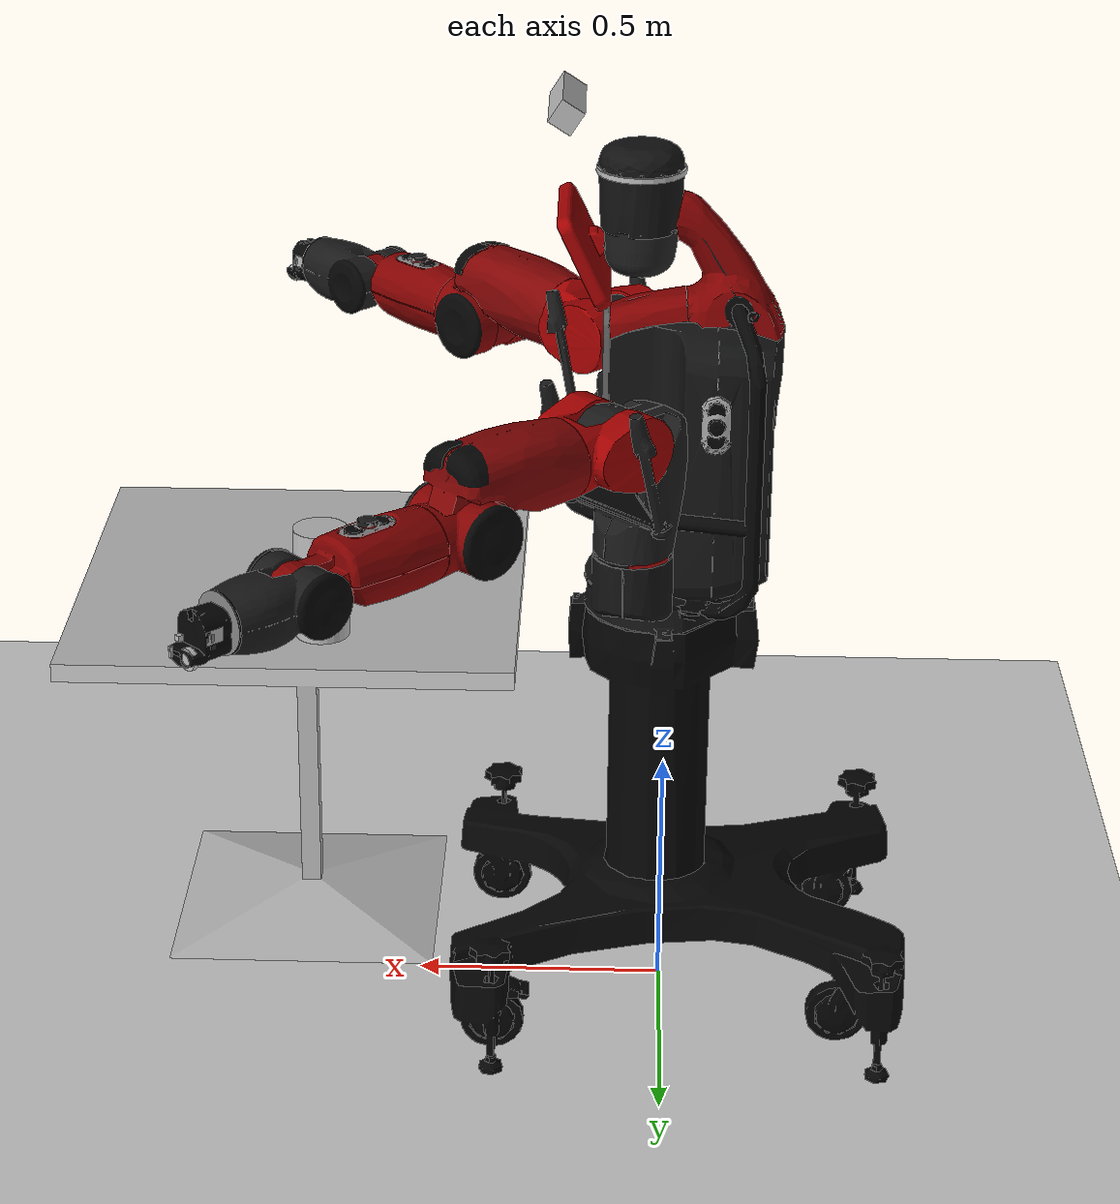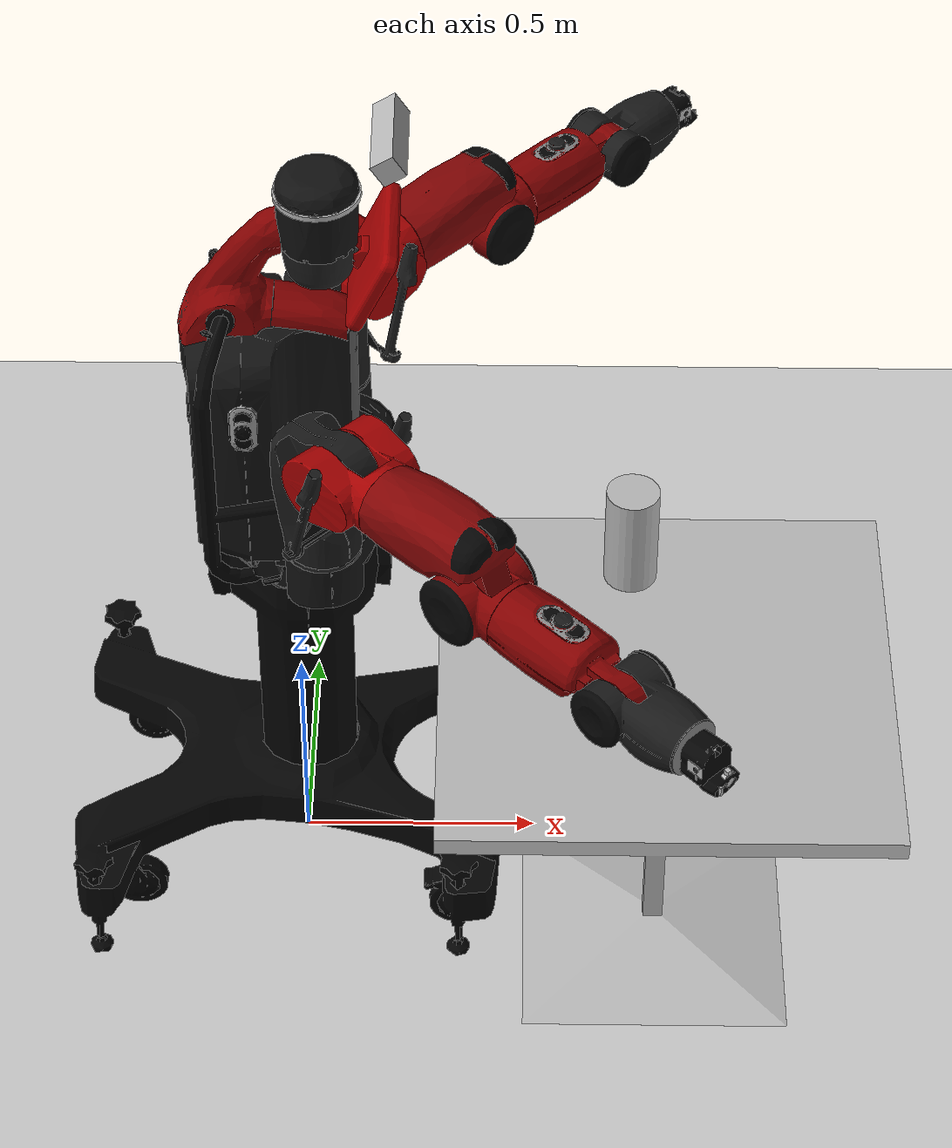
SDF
<sdf version="1.4">
 <world name="default">
  <model name="ground_plane">
   <static>1</static>
   <link name="link">
    <collision name="collision">
     <geometry><plane><normal>0 0 1</normal><size>100 100</size></plane></geometry>
     <surface><friction><ode><mu>100</mu><mu2>50</mu2></ode></friction></surface>
    </collision>
    <visual name="visual">
     <cast_shadows>0</cast_shadows>
     <geometry><plane><normal>0 0 1</normal><size>100 100</size></plane></geometry>
     <material>
      <script><uri>file://media/materials/scripts/gazebo.material</uri><name>Gazebo/Grey</name></script>
     </material>
    </visual>
    <velocity_decay><linear>0</linear><angular>0</angular></velocity_decay>
   </link>
  </model>
  <light name="sun" type="directional">
   <pose>0 0 10 0 -0 0</pose>
   <diffuse>0.8 0.8 0.8 1</diffuse>
   <specular>0.2 0.2 0.2 1</specular>
   <attenuation>
    <range>1000</range>
    <constant>0.9</constant>
    <linear>0.01</linear>
    <quadratic>0.001</quadratic>
   </attenuation>
   <direction>-0.5 0.1 -0.9</direction>
  </light>
  <physics type="ode">
   <real_time_update_rate>1000</real_time_update_rate>
   <gravity>0 0 -9.81</gravity>
   <max_step_size>0.001</max_step_size>
   <real_time_factor>1</real_time_factor>
  </physics>
  <scene><ambient>0.4 0.4 0.4 1</ambient><background>0.7 0.7 0.7 1</background><shadows>1</shadows></scene>
  <spherical_coordinates>
   <surface_model>EARTH_WGS84</surface_model>
   <latitude_deg>0</latitude_deg>
   <longitude_deg>0</longitude_deg>
   <elevation>0</elevation>
   <heading_deg>0</heading_deg>
  </spherical_coordinates>
  <model name="baxter">
   <link name="base">
    <inertial>
     <pose>0.000207875 -1.05548e-22 0.000989949 0 -0 0</pose>
     <mass>96.3011</mass>
     <inertia>
      <ixx>7.00413</ixx>
      <ixy>0.00068017</ixy>
      <ixz>0.62881</ixz>
      <iyy>7.84493</iyy>
      <iyz>0.00434511</iyz>
      <izz>5.76917</izz>
     </inertia>
    </inertial>
    <collision name="base_collision_collision_head_link_1">
     <pose>0.04 -0.04 0.75 0 -0 0</pose>
     <geometry><sphere><radius>0.22</radius></sphere></geometry>
    </collision>
    <collision name="base_collision_collision_head_link_2">
     <pose>0.04 0.04 0.75 0 -0 0</pose>
     <geometry><sphere><radius>0.22</radius></sphere></geometry>
    </collision>
    <collision name="base_collision_kinect_link">
     <pose>0.2 0 0.95 0 1 0</pose>
     <geometry><box><size>0.05 0.2 0.05</size></box></geometry>
    </collision>
    <collision name="base_collision_pedestal">
     <geometry>
      <mesh>
       <scale>1 1 1</scale>
       <uri>/home/wyatt/ros_ws/src/rethink/baxter_common/baxter_description/meshes/base/pedestal_link_collision.DAE</uri>
      </mesh>
     </geometry>
    </collision>
    <collision name="base_collision_sonar_ring">
     <pose>0.0947 0 0.817 0 -0 0</pose>
     <geometry><sphere><radius>0.001</radius></sphere></geometry>
    </collision>
    <collision name="base_collision_torso">
     <geometry>
      <mesh>
       <scale>1 1 1</scale>
       <uri>/home/wyatt/ros_ws/src/rethink/baxter_common/baxter_description/meshes/torso/base_link_collision.DAE</uri>
      </mesh>
     </geometry>
    </collision>
    <visual name="base_visual_collision_head_link_1">
     <pose>0.11 0 0.75 0 -0 0</pose>
     <geometry><sphere><radius>0.001</radius></sphere></geometry>
    </visual>
    <visual name="base_visual_collision_head_link_2">
     <pose>0.11 0 0.75 0 -0 0</pose>
     <geometry><sphere><radius>0.001</radius></sphere></geometry>
    </visual>
    <visual name="base_visual_kinect_link">
     <pose>0.2 0 0.95 0 1 0</pose>
     <geometry><box><size>0.05 0.2 0.05</size></box></geometry>
    </visual>
    <visual name="base_visual_pedestal">
     <geometry>
      <mesh>
       <scale>1 1 1</scale>
       <uri>/home/wyatt/ros_ws/src/rethink/baxter_common/baxter_description/meshes/base/PEDESTAL.DAE</uri>
      </mesh>
     </geometry>
    </visual>
    <visual name="base_visual_sonar_ring">
     <pose>0.06 0 0.82653 0 -0 0</pose>
     <geometry><cylinder><length>0.01</length><radius>0.085</radius></cylinder></geometry>
    </visual>
    <visual name="base_visual_torso">
     <geometry>
      <mesh>
       <scale>1 1 1</scale>
       <uri>/home/wyatt/ros_ws/src/rethink/baxter_common/baxter_description/meshes/torso/base_link.DAE</uri>
      </mesh>
     </geometry>
    </visual>
    <velocity_decay><linear>0</linear><angular>0</angular></velocity_decay>
    <sensor name="openni_camera_camera" type="depth">
     <always_on>1</always_on>
     <visualize>1</visualize>
     <camera name="__default__">
      <horizontal_fov>1.047</horizontal_fov>
      <image><width>640</width><height>480</height><format>R8G8B8</format></image>
      <depth_camera><output>depths</output></depth_camera>
      <clip><near>0.1</near><far>100</far></clip>
     </camera>
     <plugin name="camera_controller" filename="libgazebo_ros_openni_kinect.so">
      <alwaysOn>true</alwaysOn>
      <updateRate>10.0</updateRate>
      <cameraName>kinect</cameraName>
      <frameName>kinect_pc_frame</frameName>
      <imageTopicName>rgb/image_raw</imageTopicName>
      <depthImageTopicName>depth/image_raw</depthImageTopicName>
      <pointCloudTopicName>depth/points</pointCloudTopicName>
      <cameraInfoTopicName>rgb/camera_info</cameraInfoTopicName>
      <depthImageCameraInfoTopicName>depth/camera_info</depthImageCameraInfoTopicName>
      <pointCloudCutoff>0.4</pointCloudCutoff>
      <hackBaseline>0.07</hackBaseline>
      <distortionK1>0.0</distortionK1>
      <distortionK2>0.0</distortionK2>
      <distortionK3>0.0</distortionK3>
      <distortionT1>0.0</distortionT1>
      <distortionT2>0.0</distortionT2>
      <CxPrime>0.0</CxPrime>
      <Cx>0.0</Cx>
      <Cy>0.0</Cy>
      <focalLength>0.0</focalLength>
      <robotNamespace>/</robotNamespace>
     </plugin>
     <pose>0.2 0 0.95 0 1 0</pose>
    </sensor>
    <velocity_decay><linear>0</linear><angular>0</angular></velocity_decay>
    <velocity_decay><linear>0</linear><angular>0</angular></velocity_decay>
    <sensor name="sonar" type="ray">
     <ray>
      <scan>
       <horizontal>
        <samples>12</samples>
        <resolution>1</resolution>
        <min_angle>-3.14</min_angle>
        <max_angle>3.14</max_angle>
       </horizontal>
       <vertical>
        <samples>2</samples>
        <resolution>1</resolution>
        <min_angle>-0.001</min_angle>
        <max_angle>0</max_angle>
       </vertical>
      </scan>
      <range><min>0.05</min><max>50</max></range>
     </ray>
     <plugin name="sonar_plugin" filename="libgazebo_ros_block_laser.so">
      <gaussianNoise>0.00</gaussianNoise>
      <alwaysOn>true</alwaysOn>
      <updateRate>100.0</updateRate>
      <topicName>/robot/sonar/head_sonar/state</topicName>
      <frameName>sonar_ring</frameName>
      <robotNamespace>/</robotNamespace>
     </plugin>
     <always_on>1</always_on>
     <update_rate>100</update_rate>
     <pose>0.0947 0 0.817 0 -0 0</pose>
    </sensor>
   </link>
   <link name="head">
    <pose>0.06 0 0.686 0 -0 0</pose>
    <inertial>
     <pose>0.0546769 1.41761e-18 4.85084e-06 0 -0 0</pose>
     <mass>0.988238</mass>
     <inertia>
      <ixx>0.00620194</ixx>
      <ixy>0.000202093</ixy>
      <ixz>0.000495898</ixz>
      <iyy>0.010977</iyy>
      <iyz>-0.00109806</iyz>
      <izz>0.00983914</izz>
     </inertia>
    </inertial>
    <collision name="head_collision"><geometry><sphere><radius>0.001</radius></sphere></geometry></collision>
    <collision name="head_collision_screen">
     <pose>0.1227 0 0 1.75057 5.55112e-17 1.5708</pose>
     <geometry><sphere><radius>0.001</radius></sphere></geometry>
    </collision>
    <visual name="head_visual">
     <pose>0 0 0.00953 0 -0 0</pose>
     <geometry>
      <mesh>
       <scale>1 1 1</scale>
       <uri>/home/wyatt/ros_ws/src/rethink/baxter_common/baxter_description/meshes/head/H0.DAE</uri>
      </mesh>
     </geometry>
    </visual>
    <visual name="head_visual_display">
     <pose>0.119839 1.40131e-14 -0.0157421 2.01237 5.55112e-17 1.5708</pose>
     <geometry><box><size>0.218 0.16 0.001</size></box></geometry>
     <plugin name="screen_video_controller" filename="libgazebo_ros_video.so">
      <height>600</height>
      <width>1024</width>
      <topicName>/robot/xdisplay</topicName>
      <robotNamespace>/</robotNamespace>
     </plugin>
    </visual>
    <visual name="head_visual_screen">
     <pose>0.0868552 1.75522e-13 -0.00317182 1.5708 0.179774 8.02016e-14</pose>
     <geometry>
      <mesh>
       <scale>1 1 1</scale>
       <uri>/home/wyatt/ros_ws/src/rethink/baxter_common/baxter_description/meshes/head/H1.DAE</uri>
      </mesh>
     </geometry>
    </visual>
    <velocity_decay><linear>0</linear><angular>0</angular></velocity_decay>
    <sensor name="head_camera" type="camera">
     <update_rate>30</update_rate>
     <camera name="head_camera">
      <pose>0 0.21 0 -7.96765e-17 -0.8 -1.5708</pose>
      <horizontal_fov>1.39626</horizontal_fov>
      <image><width>800</width><height>800</height><format>R8G8B8</format></image>
      <clip><near>0.02</near><far>300</far></clip>
      <noise><type>gaussian</type><mean>0</mean><stddev>0.007</stddev></noise>
     </camera>
     <plugin name="camera_controller" filename="libgazebo_ros_camera.so">
      <alwaysOn>true</alwaysOn>
      <updateRate>0.0</updateRate>
      <cameraName>head_camera</cameraName>
      <imageTopicName>image</imageTopicName>
      <cameraInfoTopicName>camera_info</cameraInfoTopicName>
      <frameName>head_camera</frameName>
      <hackBaseline>0.07</hackBaseline>
      <distortionK1>0.0</distortionK1>
      <distortionK2>0.0</distortionK2>
      <distortionK3>0.0</distortionK3>
      <distortionT1>0.0</distortionT1>
      <distortionT2>0.0</distortionT2>
      <robotNamespace>/cameras</robotNamespace>
     </plugin>
     <pose>0.12839 0 0.06368 1.75057 5.55112e-17 1.5708</pose>
    </sensor>
    <velocity_decay><linear>0</linear><angular>0</angular></velocity_decay>
   </link>
   <joint name="head_pan" type="revolute">
    <child>head</child>
    <parent>base</parent>
    <axis>
     <xyz>0 0 1</xyz>
     <limit><lower>-1.5708</lower><upper>1.5708</upper><effort>50000</effort><velocity>10000</velocity></limit>
     <dynamics><damping>0.7</damping></dynamics>
    </axis>
    <physics>
     <ode>
      <implicit_spring_damper>1</implicit_spring_damper>
      <cfm_damping>1</cfm_damping>
      <limit><cfm>0</cfm><erp>0.2</erp></limit>
     </ode>
    </physics>
   </joint>
   <link name="left_upper_shoulder">
    <pose>0.0640272 0.259027 0.129626 0 -0 0.7854</pose>
    <inertial>
     <pose>0.01783 0.00086 0.19127 0 -0 0</pose>
     <mass>5.70044</mass>
     <inertia>
      <ixx>0.047091</ixx>
      <ixy>0.000127876</ixy>
      <ixz>0.0061487</ixz>
      <iyy>0.0376698</iyy>
      <iyz>0.000780869</iyz>
      <izz>0.0359599</izz>
     </inertia>
    </inertial>
    <collision name="left_upper_shoulder_collision">
     <pose>0 0 0.1361 0 -0 0</pose>
     <geometry><cylinder><length>0.2722</length><radius>0.06</radius></cylinder></geometry>
    </collision>
    <visual name="left_upper_shoulder_visual">
     <geometry>
      <mesh>
       <scale>1 1 1</scale>
       <uri>/home/wyatt/ros_ws/src/rethink/baxter_common/baxter_description/meshes/upper_shoulder/S0.DAE</uri>
      </mesh>
     </geometry>
    </visual>
    <velocity_decay><linear>0</linear><angular>0</angular></velocity_decay>
    <gravity>0</gravity>
   </link>
   <joint name="left_s0" type="revolute">
    <child>left_upper_shoulder</child>
    <parent>base</parent>
    <axis>
     <xyz>0 0 1</xyz>
     <limit><lower>-1.70168</lower><upper>1.70168</upper><effort>50</effort><velocity>1.5</velocity></limit>
     <dynamics><damping>0.7</damping></dynamics>
    </axis>
    <physics>
     <ode>
      <implicit_spring_damper>1</implicit_spring_damper>
      <cfm_damping>1</cfm_damping>
      <limit><cfm>0</cfm><erp>0.2</erp></limit>
     </ode>
    </physics>
   </joint>
   <link name="left_lower_shoulder">
    <pose>0.112818 0.307818 0.399976 -1.5708 -0 0.7854</pose>
    <inertial>
     <pose>0.0684512 0.00268992 -0.00528984 0 -0 0</pose>
     <mass>3.22708</mass>
     <inertia>
      <ixx>0.0117521</ixx>
      <ixy>-0.000300954</ixy>
      <ixz>0.00207674</ixz>
      <iyy>0.0278861</iyy>
      <iyz>-0.000188219</iyz>
      <izz>0.0207877</izz>
     </inertia>
    </inertial>
    <collision name="left_lower_shoulder_collision">
     <geometry><cylinder><length>0.12</length><radius>0.06</radius></cylinder></geometry>
    </collision>
    <collision name="left_lower_shoulder_collision_left_upper_elbow_visual">
     <pose>0.2435 -6.68382e-13 6.68382e-13 1.5708 -5.55112e-17 1.5708</pose>
     <geometry><cylinder><length>0.273</length><radius>0.06</radius></cylinder></geometry>
    </collision>
    <visual name="left_lower_shoulder_visual">
     <geometry>
      <mesh>
       <scale>1 1 1</scale>
       <uri>/home/wyatt/ros_ws/src/rethink/baxter_common/baxter_description/meshes/lower_shoulder/S1.DAE</uri>
      </mesh>
     </geometry>
    </visual>
    <velocity_decay><linear>0</linear><angular>0</angular></velocity_decay>
    <gravity>0</gravity>
   </link>
   <joint name="left_s1" type="revolute">
    <child>left_lower_shoulder</child>
    <parent>left_upper_shoulder</parent>
    <axis>
     <xyz>-0.707108 0.707105 0</xyz>
     <limit><lower>-2.147</lower><upper>1.047</upper><effort>100</effort><velocity>1.5</velocity></limit>
     <dynamics><damping>0.7</damping></dynamics>
    </axis>
    <physics>
     <ode>
      <implicit_spring_damper>1</implicit_spring_damper>
      <cfm_damping>1</cfm_damping>
      <limit><cfm>0</cfm><erp>0.2</erp></limit>
     </ode>
    </physics>
   </joint>
   <link name="left_upper_elbow">
    <pose>0.184942 0.379943 0.399976 -2.35616 1.57079 -1.57076</pose>
    <inertial>
     <pose>-0.00276 0.00132 0.18086 0 -0 0</pose>
     <mass>4.31272</mass>
     <inertia>
      <ixx>0.0266173</ixx>
      <ixy>0.000292706</ixy>
      <ixz>0.0039219</ixz>
      <iyy>0.0284436</iyy>
      <iyz>0.00108389</iyz>
      <izz>0.0124801</izz>
     </inertia>
    </inertial>
    <collision name="left_upper_elbow_collision">
     <pose>0 0 -0.0535 0 -0 0</pose>
     <geometry><cylinder><length>0.107</length><radius>0.06</radius></cylinder></geometry>
    </collision>
    <visual name="left_upper_elbow_visual">
     <geometry>
      <mesh>
       <scale>1 1 1</scale>
       <uri>/home/wyatt/ros_ws/src/rethink/baxter_common/baxter_description/meshes/upper_elbow/E0.DAE</uri>
      </mesh>
     </geometry>
    </visual>
    <velocity_decay><linear>0</linear><angular>0</angular></velocity_decay>
    <gravity>0</gravity>
   </link>
   <joint name="left_e0" type="revolute">
    <child>left_upper_elbow</child>
    <parent>left_lower_shoulder</parent>
    <axis>
     <xyz>0.707105 0.707108 0</xyz>
     <limit><lower>-3.05418</lower><upper>3.05418</upper><effort>50</effort><velocity>1.5</velocity></limit>
     <dynamics><damping>0.7</damping></dynamics>
    </axis>
    <physics>
     <ode>
      <implicit_spring_damper>1</implicit_spring_damper>
      <cfm_damping>1</cfm_damping>
      <limit><cfm>0</cfm><erp>0.2</erp></limit>
     </ode>
    </physics>
   </joint>
   <link name="left_lower_elbow">
    <pose>0.370501 0.565502 0.330976 -1.5708 -0 0.7854</pose>
    <inertial>
     <pose>0.026113 0.00158992 -0.0111695 0 -0 0</pose>
     <mass>2.07216</mass>
     <inertia>
      <ixx>0.00711585</ixx>
      <ixy>0.000360372</ixy>
      <ixz>0.00074588</ixz>
      <iyy>0.0131827</iyy>
      <iyz>-0.000196632</iyz>
      <izz>0.00926891</izz>
     </inertia>
    </inertial>
    <collision name="left_lower_elbow_collision">
     <geometry><cylinder><length>0.1</length><radius>0.06</radius></cylinder></geometry>
    </collision>
    <collision name="left_lower_elbow_collision_left_upper_forearm_visual">
     <pose>0.224 -6.6594e-13 6.6594e-13 1.5708 -5.55112e-17 1.5708</pose>
     <geometry><cylinder><length>0.272</length><radius>0.06</radius></cylinder></geometry>
    </collision>
    <visual name="left_lower_elbow_visual">
     <geometry>
      <mesh>
       <scale>1 1 1</scale>
       <uri>/home/wyatt/ros_ws/src/rethink/baxter_common/baxter_description/meshes/lower_elbow/E1.DAE</uri>
      </mesh>
     </geometry>
    </visual>
    <velocity_decay><linear>0</linear><angular>0</angular></velocity_decay>
    <gravity>0</gravity>
   </link>
   <joint name="left_e1" type="revolute">
    <child>left_lower_elbow</child>
    <parent>left_upper_elbow</parent>
    <axis>
     <xyz>-0.707108 0.707105 0</xyz>
     <limit><lower>-0.05</lower><upper>2.618</upper><effort>50</effort><velocity>1.5</velocity></limit>
     <dynamics><damping>0.7</damping></dynamics>
    </axis>
    <physics>
     <ode>
      <implicit_spring_damper>1</implicit_spring_damper>
      <cfm_damping>1</cfm_damping>
      <limit><cfm>0</cfm><erp>0.2</erp></limit>
     </ode>
    </physics>
   </joint>
   <link name="left_upper_forearm">
    <pose>0.44375 0.638751 0.330976 -2.03443 1.57079 -1.24903</pose>
    <inertial>
     <pose>-0.00168244 0.0045998 0.139519 0 -0 0</pose>
     <mass>2.24675</mass>
     <inertia>
      <ixx>0.0166775</ixx>
      <ixy>0.000184012</ixy>
      <ixz>0.000186469</ixz>
      <iyy>0.0167549</iyy>
      <iyz>-0.000647332</iyz>
      <izz>0.00374662</izz>
     </inertia>
    </inertial>
    <collision name="left_upper_forearm_collision">
     <pose>0 0 -0.044 0 -0 0</pose>
     <geometry><cylinder><length>0.088</length><radius>0.06</radius></cylinder></geometry>
    </collision>
    <visual name="left_upper_forearm_visual">
     <geometry>
      <mesh>
       <scale>1 1 1</scale>
       <uri>/home/wyatt/ros_ws/src/rethink/baxter_common/baxter_description/meshes/upper_forearm/W0.DAE</uri>
      </mesh>
     </geometry>
    </visual>
    <velocity_decay><linear>0</linear><angular>0</angular></velocity_decay>
    <gravity>0</gravity>
   </link>
   <joint name="left_w0" type="revolute">
    <child>left_upper_forearm</child>
    <parent>left_lower_elbow</parent>
    <axis>
     <xyz>0.707105 0.707108 0</xyz>
     <limit><lower>-3.059</lower><upper>3.059</upper><effort>15</effort><velocity>4</velocity></limit>
     <dynamics><damping>0.7</damping></dynamics>
    </axis>
    <physics>
     <ode>
      <implicit_spring_damper>1</implicit_spring_damper>
      <cfm_damping>1</cfm_damping>
      <limit><cfm>0</cfm><erp>0.2</erp></limit>
     </ode>
    </physics>
   </joint>
   <link name="left_lower_forearm">
    <pose>0.635163 0.830166 0.320976 -1.5708 -1.66533e-16 0.7854</pose>
    <inertial>
     <pose>0.06041 0.00697 0.006 0 -0 0</pose>
     <mass>1.60979</mass>
     <inertia>
      <ixx>0.00387607</ixx>
      <ixy>-0.000443848</ixy>
      <ixz>-0.00021115</ixz>
      <iyy>0.00700538</iyy>
      <iyz>0.000153481</iyz>
      <izz>0.00552755</izz>
     </inertia>
    </inertial>
    <collision name="left_lower_forearm_collision">
     <geometry><cylinder><length>0.1</length><radius>0.06</radius></cylinder></geometry>
    </collision>
    <visual name="left_lower_forearm_visual">
     <geometry>
      <mesh>
       <scale>1 1 1</scale>
       <uri>/home/wyatt/ros_ws/src/rethink/baxter_common/baxter_description/meshes/lower_forearm/W1.DAE</uri>
      </mesh>
     </geometry>
    </visual>
    <velocity_decay><linear>0</linear><angular>0</angular></velocity_decay>
    <gravity>0</gravity>
   </link>
   <joint name="left_w1" type="revolute">
    <child>left_lower_forearm</child>
    <parent>left_upper_forearm</parent>
    <axis>
     <xyz>-0.707108 0.707105 0</xyz>
     <limit><lower>-1.5708</lower><upper>2.094</upper><effort>15</effort><velocity>4</velocity></limit>
     <dynamics><damping>0.7</damping></dynamics>
    </axis>
    <physics>
     <ode>
      <implicit_spring_damper>1</implicit_spring_damper>
      <cfm_damping>1</cfm_damping>
      <limit><cfm>0</cfm><erp>0.2</erp></limit>
     </ode>
    </physics>
   </joint>
   <link name="left_wrist">
    <pose>0.71717 0.912173 0.320976 -1.89253 1.57079 -1.10713</pose>
    <inertial>
     <pose>0.00515172 0.000956882 0.0467434 0 -0 0</pose>
     <mass>0.54278</mass>
     <inertia>
      <ixx>0.00121873</ixx>
      <ixy>8.12598e-06</ixy>
      <ixz>-6.62108e-05</ixz>
      <iyy>0.00128054</iyy>
      <iyz>4.75609e-06</iyz>
      <izz>0.000555294</izz>
     </inertia>
    </inertial>
    <collision name="left_wrist_collision">
     <geometry><cylinder><length>0.165</length><radius>0.06</radius></cylinder></geometry>
    </collision>
    <collision name="left_wrist_collision_left_hand">
     <pose>0 0 0.09035 0 -0 0</pose>
     <geometry><cylinder><length>0.0464</length><radius>0.04</radius></cylinder></geometry>
    </collision>
    <visual name="left_wrist_visual">
     <geometry>
      <mesh>
       <scale>1 1 1</scale>
       <uri>/home/wyatt/ros_ws/src/rethink/baxter_common/baxter_description/meshes/wrist/W2.DAE</uri>
      </mesh>
     </geometry>
    </visual>
    <visual name="left_wrist_visual_left_gripper">
     <pose>0 0 0.13855 0 -0 0</pose>
     <geometry><box><size>0.01 0.01 0.01</size></box></geometry>
    </visual>
    <visual name="left_wrist_visual_left_gripper_base">
     <pose>0 0 0.09355 0 -0 0</pose>
     <geometry><box><size>0.025 0.075 0.035</size></box></geometry>
    </visual>
    <visual name="left_wrist_visual_left_hand_accelerometer">
     <pose>0.00198 0.000133 0.09895 0 -0 0</pose>
     <geometry><box><size>0.01 0.01 0.01</size></box></geometry>
    </visual>
    <visual name="left_wrist_visual_left_hand_camera">
     <pose>0.03825 0.012 0.128905 0 0 -1.5708</pose>
     <geometry><cylinder><length>0.01</length><radius>0.02</radius></cylinder></geometry>
    </visual>
    <visual name="left_wrist_visual_left_hand_range">
     <pose>0.032 -0.020245 0.14235 -3.14158 -1.57079 1.57078</pose>
     <geometry><box><size>0.005 0.02 0.005</size></box></geometry>
    </visual>
    <velocity_decay><linear>0</linear><angular>0</angular></velocity_decay>
    <sensor name="left_hand_camera" type="camera">
     <update_rate>30</update_rate>
     <camera name="left_hand_camera">
      <pose>0 0 0 2.65356e-06 -1.57079 1.57079</pose>
      <horizontal_fov>1.39626</horizontal_fov>
      <image><width>800</width><height>800</height><format>R8G8B8</format></image>
      <clip><near>0.02</near><far>300</far></clip>
      <noise><type>gaussian</type><mean>0</mean><stddev>0.007</stddev></noise>
     </camera>
     <plugin name="camera_controller" filename="libgazebo_ros_camera.so">
      <alwaysOn>true</alwaysOn>
      <updateRate>0.0</updateRate>
      <cameraName>left_hand_camera</cameraName>
      <imageTopicName>image</imageTopicName>
      <cameraInfoTopicName>camera_info</cameraInfoTopicName>
      <frameName>left_hand_camera</frameName>
      <hackBaseline>0.07</hackBaseline>
      <distortionK1>0.0</distortionK1>
      <distortionK2>0.0</distortionK2>
      <distortionK3>0.0</distortionK3>
      <distortionT1>0.0</distortionT1>
      <distortionT2>0.0</distortionT2>
      <robotNamespace>/cameras</robotNamespace>
     </plugin>
     <pose>0.03825 0.012 0.128905 0 0 -1.5708</pose>
    </sensor>
    <gravity>0</gravity>
    <velocity_decay><linear>0</linear><angular>0</angular></velocity_decay>
    <sensor name="ir_left" type="ray">
     <ray>
      <scan>
       <horizontal>
        <samples>1</samples>
        <resolution>1</resolution>
        <min_angle>-0.5</min_angle>
        <max_angle>0.5</max_angle>
       </horizontal>
      </scan>
      <range><min>0.004</min><max>0.4</max></range>
     </ray>
     <plugin name="plugin_4" filename="libgazebo_ros_laser.so">
      <gaussianNoise>0.005</gaussianNoise>
      <alwaysOn>true</alwaysOn>
      <updateRate>100</updateRate>
      <topicName>/sim/laserscan/left_hand_range/state</topicName>
      <frameName>left_hand_range</frameName>
      <robotNamespace>/</robotNamespace>
     </plugin>
     <always_on>1</always_on>
     <update_rate>100</update_rate>
     <pose>0.032 -0.020245 0.14235 -3.14158 -1.57079 1.57078</pose>
    </sensor>
   </link>
   <joint name="left_w2" type="revolute">
    <child>left_wrist</child>
    <parent>left_lower_forearm</parent>
    <axis>
     <xyz>0.707105 0.707108 0</xyz>
     <limit><lower>-3.059</lower><upper>3.059</upper><effort>15</effort><velocity>4</velocity></limit>
     <dynamics><damping>0.7</damping></dynamics>
    </axis>
    <physics>
     <ode>
      <implicit_spring_damper>1</implicit_spring_damper>
      <cfm_damping>1</cfm_damping>
      <limit><cfm>0</cfm><erp>0.2</erp></limit>
     </ode>
    </physics>
   </joint>
   <link name="right_upper_shoulder">
    <pose>0.0640272 -0.259027 0.129626 0 0 -0.7854</pose>
    <inertial>
     <pose>0.01783 0.00086 0.19127 0 -0 0</pose>
     <mass>5.70044</mass>
     <inertia>
      <ixx>0.047091</ixx>
      <ixy>0.000127876</ixy>
      <ixz>0.0061487</ixz>
      <iyy>0.0376698</iyy>
      <iyz>0.000780869</iyz>
      <izz>0.0359599</izz>
     </inertia>
    </inertial>
    <collision name="right_upper_shoulder_collision">
     <pose>0 0 0.1361 0 -0 0</pose>
     <geometry><cylinder><length>0.2722</length><radius>0.06</radius></cylinder></geometry>
    </collision>
    <visual name="right_upper_shoulder_visual">
     <geometry>
      <mesh>
       <scale>1 1 1</scale>
       <uri>/home/wyatt/ros_ws/src/rethink/baxter_common/baxter_description/meshes/upper_shoulder/S0.DAE</uri>
      </mesh>
     </geometry>
    </visual>
    <velocity_decay><linear>0</linear><angular>0</angular></velocity_decay>
    <gravity>0</gravity>
   </link>
   <joint name="right_s0" type="revolute">
    <child>right_upper_shoulder</child>
    <parent>base</parent>
    <axis>
     <xyz>0 0 1</xyz>
     <limit><lower>-1.70168</lower><upper>1.70168</upper><effort>50</effort><velocity>1.5</velocity></limit>
     <dynamics><damping>0.7</damping></dynamics>
    </axis>
    <physics>
     <ode>
      <implicit_spring_damper>1</implicit_spring_damper>
      <cfm_damping>1</cfm_damping>
      <limit><cfm>0</cfm><erp>0.2</erp></limit>
     </ode>
    </physics>
   </joint>
   <link name="right_lower_shoulder">
    <pose>0.112818 -0.307818 0.399976 -1.5708 -0 -0.7854</pose>
    <inertial>
     <pose>0.0684512 0.00268992 -0.00528984 0 -0 0</pose>
     <mass>3.22708</mass>
     <inertia>
      <ixx>0.0117521</ixx>
      <ixy>-0.000300954</ixy>
      <ixz>0.00207674</ixz>
      <iyy>0.0278861</iyy>
      <iyz>-0.000188219</iyz>
      <izz>0.0207877</izz>
     </inertia>
    </inertial>
    <collision name="right_lower_shoulder_collision">
     <geometry><cylinder><length>0.12</length><radius>0.06</radius></cylinder></geometry>
    </collision>
    <collision name="right_lower_shoulder_collision_right_upper_elbow_visual">
     <pose>0.2435 -6.68382e-13 6.68382e-13 1.5708 -5.55112e-17 1.5708</pose>
     <geometry><cylinder><length>0.273</length><radius>0.06</radius></cylinder></geometry>
    </collision>
    <visual name="right_lower_shoulder_visual">
     <geometry>
      <mesh>
       <scale>1 1 1</scale>
       <uri>/home/wyatt/ros_ws/src/rethink/baxter_common/baxter_description/meshes/lower_shoulder/S1.DAE</uri>
      </mesh>
     </geometry>
    </visual>
    <velocity_decay><linear>0</linear><angular>0</angular></velocity_decay>
    <gravity>0</gravity>
   </link>
   <joint name="right_s1" type="revolute">
    <child>right_lower_shoulder</child>
    <parent>right_upper_shoulder</parent>
    <axis>
     <xyz>0.707108 0.707105 0</xyz>
     <limit><lower>-2.147</lower><upper>1.047</upper><effort>100</effort><velocity>1.5</velocity></limit>
     <dynamics><damping>0.7</damping></dynamics>
    </axis>
    <physics>
     <ode>
      <implicit_spring_damper>1</implicit_spring_damper>
      <cfm_damping>1</cfm_damping>
      <limit><cfm>0</cfm><erp>0.2</erp></limit>
     </ode>
    </physics>
   </joint>
   <link name="right_upper_elbow">
    <pose>0.184942 -0.379943 0.399976 -2.35618 1.57079 -3.14158</pose>
    <inertial>
     <pose>-0.00276 0.00132 0.18086 0 -0 0</pose>
     <mass>4.31272</mass>
     <inertia>
      <ixx>0.0266173</ixx>
      <ixy>0.000292706</ixy>
      <ixz>0.0039219</ixz>
      <iyy>0.0284436</iyy>
      <iyz>0.00108389</iyz>
      <izz>0.0124801</izz>
     </inertia>
    </inertial>
    <collision name="right_upper_elbow_collision">
     <pose>0 0 -0.0535 0 -0 0</pose>
     <geometry><cylinder><length>0.107</length><radius>0.06</radius></cylinder></geometry>
    </collision>
    <visual name="right_upper_elbow_visual">
     <geometry>
      <mesh>
       <scale>1 1 1</scale>
       <uri>/home/wyatt/ros_ws/src/rethink/baxter_common/baxter_description/meshes/upper_elbow/E0.DAE</uri>
      </mesh>
     </geometry>
    </visual>
    <velocity_decay><linear>0</linear><angular>0</angular></velocity_decay>
    <gravity>0</gravity>
   </link>
   <joint name="right_e0" type="revolute">
    <child>right_upper_elbow</child>
    <parent>right_lower_shoulder</parent>
    <axis>
     <xyz>0.707105 -0.707108 0</xyz>
     <limit><lower>-3.05418</lower><upper>3.05418</upper><effort>50</effort><velocity>1.5</velocity></limit>
     <dynamics><damping>0.7</damping></dynamics>
    </axis>
    <physics>
     <ode>
      <implicit_spring_damper>1</implicit_spring_damper>
      <cfm_damping>1</cfm_damping>
      <limit><cfm>0</cfm><erp>0.2</erp></limit>
     </ode>
    </physics>
   </joint>
   <link name="right_lower_elbow">
    <pose>0.370501 -0.565502 0.330976 -1.5708 1.66533e-16 -0.7854</pose>
    <inertial>
     <pose>0.026113 0.00158992 -0.0111695 0 -0 0</pose>
     <mass>2.07216</mass>
     <inertia>
      <ixx>0.00711585</ixx>
      <ixy>0.000360372</ixy>
      <ixz>0.00074588</ixz>
      <iyy>0.0131827</iyy>
      <iyz>-0.000196632</iyz>
      <izz>0.00926891</izz>
     </inertia>
    </inertial>
    <collision name="right_lower_elbow_collision">
     <geometry><cylinder><length>0.1</length><radius>0.06</radius></cylinder></geometry>
    </collision>
    <collision name="right_lower_elbow_collision_right_upper_forearm_visual">
     <pose>0.224 -6.6594e-13 6.6594e-13 1.5708 -5.55112e-17 1.5708</pose>
     <geometry><cylinder><length>0.272</length><radius>0.06</radius></cylinder></geometry>
    </collision>
    <visual name="right_lower_elbow_visual">
     <geometry>
      <mesh>
       <scale>1 1 1</scale>
       <uri>/home/wyatt/ros_ws/src/rethink/baxter_common/baxter_description/meshes/lower_elbow/E1.DAE</uri>
      </mesh>
     </geometry>
    </visual>
    <velocity_decay><linear>0</linear><angular>0</angular></velocity_decay>
    <gravity>0</gravity>
   </link>
   <joint name="right_e1" type="revolute">
    <child>right_lower_elbow</child>
    <parent>right_upper_elbow</parent>
    <axis>
     <xyz>0.707108 0.707105 0</xyz>
     <limit><lower>-0.05</lower><upper>2.618</upper><effort>50</effort><velocity>1.5</velocity></limit>
     <dynamics><damping>0.7</damping></dynamics>
    </axis>
    <physics>
     <ode>
      <implicit_spring_damper>1</implicit_spring_damper>
      <cfm_damping>1</cfm_damping>
      <limit><cfm>0</cfm><erp>0.2</erp></limit>
     </ode>
    </physics>
   </joint>
   <link name="right_upper_forearm">
    <pose>0.44375 -0.638751 0.330976 -2.03443 1.57079 -2.81983</pose>
    <inertial>
     <pose>-0.00168244 0.0045998 0.139519 0 -0 0</pose>
     <mass>2.24675</mass>
     <inertia>
      <ixx>0.0166775</ixx>
      <ixy>0.000184012</ixy>
      <ixz>0.000186469</ixz>
      <iyy>0.0167549</iyy>
      <iyz>-0.000647332</iyz>
      <izz>0.00374662</izz>
     </inertia>
    </inertial>
    <collision name="right_upper_forearm_collision">
     <pose>0 0 -0.044 0 -0 0</pose>
     <geometry><cylinder><length>0.088</length><radius>0.06</radius></cylinder></geometry>
    </collision>
    <visual name="right_upper_forearm_visual">
     <geometry>
      <mesh>
       <scale>1 1 1</scale>
       <uri>/home/wyatt/ros_ws/src/rethink/baxter_common/baxter_description/meshes/upper_forearm/W0.DAE</uri>
      </mesh>
     </geometry>
    </visual>
    <velocity_decay><linear>0</linear><angular>0</angular></velocity_decay>
    <gravity>0</gravity>
   </link>
   <joint name="right_w0" type="revolute">
    <child>right_upper_forearm</child>
    <parent>right_lower_elbow</parent>
    <axis>
     <xyz>0.707105 -0.707108 0</xyz>
     <limit><lower>-3.059</lower><upper>3.059</upper><effort>15</effort><velocity>4</velocity></limit>
     <dynamics><damping>0.7</damping></dynamics>
    </axis>
    <physics>
     <ode>
      <implicit_spring_damper>1</implicit_spring_damper>
      <cfm_damping>1</cfm_damping>
      <limit><cfm>0</cfm><erp>0.2</erp></limit>
     </ode>
    </physics>
   </joint>
   <link name="right_lower_forearm">
    <pose>0.635163 -0.830166 0.320976 -1.5708 -0 -0.7854</pose>
    <inertial>
     <pose>0.06041 0.00697 0.006 0 -0 0</pose>
     <mass>1.60979</mass>
     <inertia>
      <ixx>0.00387607</ixx>
      <ixy>-0.000443848</ixy>
      <ixz>-0.00021115</ixz>
      <iyy>0.00700538</iyy>
      <iyz>0.000153481</iyz>
      <izz>0.00552755</izz>
     </inertia>
    </inertial>
    <collision name="right_lower_forearm_collision">
     <geometry><cylinder><length>0.1</length><radius>0.06</radius></cylinder></geometry>
    </collision>
    <visual name="right_lower_forearm_visual">
     <geometry>
      <mesh>
       <scale>1 1 1</scale>
       <uri>/home/wyatt/ros_ws/src/rethink/baxter_common/baxter_description/meshes/lower_forearm/W1.DAE</uri>
      </mesh>
     </geometry>
    </visual>
    <velocity_decay><linear>0</linear><angular>0</angular></velocity_decay>
    <gravity>0</gravity>
   </link>
   <joint name="right_w1" type="revolute">
    <child>right_lower_forearm</child>
    <parent>right_upper_forearm</parent>
    <axis>
     <xyz>0.707108 0.707105 0</xyz>
     <limit><lower>-1.5708</lower><upper>2.094</upper><effort>15</effort><velocity>4</velocity></limit>
     <dynamics><damping>0.7</damping></dynamics>
    </axis>
    <physics>
     <ode>
      <implicit_spring_damper>1</implicit_spring_damper>
      <cfm_damping>1</cfm_damping>
      <limit><cfm>0</cfm><erp>0.2</erp></limit>
     </ode>
    </physics>
   </joint>
   <link name="right_wrist">
    <pose>0.71717 -0.912173 0.320976 -1.89254 1.57079 -2.67794</pose>
    <inertial>
     <pose>0.00515172 0.000956882 0.0467434 0 -0 0</pose>
     <mass>0.54278</mass>
     <inertia>
      <ixx>0.00121873</ixx>
      <ixy>8.12598e-06</ixy>
      <ixz>-6.62108e-05</ixz>
      <iyy>0.00128054</iyy>
      <iyz>4.75609e-06</iyz>
      <izz>0.000555294</izz>
     </inertia>
    </inertial>
    <collision name="right_wrist_collision">
     <geometry><cylinder><length>0.165</length><radius>0.06</radius></cylinder></geometry>
    </collision>
    <collision name="right_wrist_collision_right_hand">
     <pose>0 0 0.09035 0 -0 0</pose>
     <geometry><cylinder><length>0.0464</length><radius>0.04</radius></cylinder></geometry>
    </collision>
    <visual name="right_wrist_visual">
     <geometry>
      <mesh>
       <scale>1 1 1</scale>
       <uri>/home/wyatt/ros_ws/src/rethink/baxter_common/baxter_description/meshes/wrist/W2.DAE</uri>
      </mesh>
     </geometry>
    </visual>
    <visual name="right_wrist_visual_right_gripper">
     <pose>0 0 0.13855 0 -0 0</pose>
     <geometry><box><size>0.01 0.01 0.01</size></box></geometry>
    </visual>
    <visual name="right_wrist_visual_right_gripper_base">
     <pose>0 0 0.09355 0 -0 0</pose>
     <geometry><box><size>0.025 0.075 0.035</size></box></geometry>
    </visual>
    <visual name="right_wrist_visual_right_hand_accelerometer">
     <pose>0.00198 0.000133 0.09895 0 -0 0</pose>
     <geometry><box><size>0.01 0.01 0.01</size></box></geometry>
    </visual>
    <visual name="right_wrist_visual_right_hand_camera">
     <pose>0.03825 0.012 0.128905 0 0 -1.5708</pose>
     <geometry><cylinder><length>0.01</length><radius>0.02</radius></cylinder></geometry>
    </visual>
    <visual name="right_wrist_visual_right_hand_range">
     <pose>0.032 -0.020245 0.14235 -3.14158 -1.57079 1.57078</pose>
     <geometry><box><size>0.005 0.02 0.005</size></box></geometry>
    </visual>
    <velocity_decay><linear>0</linear><angular>0</angular></velocity_decay>
    <sensor name="right_hand_camera" type="camera">
     <update_rate>30</update_rate>
     <camera name="right_hand_camera">
      <pose>0 0 0 2.65356e-06 -1.57079 1.57079</pose>
      <horizontal_fov>1.39626</horizontal_fov>
      <image><width>800</width><height>800</height><format>R8G8B8</format></image>
      <clip><near>0.02</near><far>300</far></clip>
      <noise><type>gaussian</type><mean>0</mean><stddev>0.007</stddev></noise>
     </camera>
     <plugin name="camera_controller" filename="libgazebo_ros_camera.so">
      <alwaysOn>true</alwaysOn>
      <updateRate>0.0</updateRate>
      <cameraName>right_hand_camera</cameraName>
      <imageTopicName>image</imageTopicName>
      <cameraInfoTopicName>camera_info</cameraInfoTopicName>
      <frameName>right_hand_camera</frameName>
      <hackBaseline>0.07</hackBaseline>
      <distortionK1>0.0</distortionK1>
      <distortionK2>0.0</distortionK2>
      <distortionK3>0.0</distortionK3>
      <distortionT1>0.0</distortionT1>
      <distortionT2>0.0</distortionT2>
      <robotNamespace>/cameras</robotNamespace>
     </plugin>
     <pose>0.03825 0.012 0.128905 0 0 -1.5708</pose>
    </sensor>
    <gravity>0</gravity>
    <velocity_decay><linear>0</linear><angular>0</angular></velocity_decay>
    <sensor name="ir_right" type="ray">
     <ray>
      <scan>
       <horizontal>
        <samples>1</samples>
        <resolution>1</resolution>
        <min_angle>-0.5</min_angle>
        <max_angle>0.5</max_angle>
       </horizontal>
      </scan>
      <range><min>0.004</min><max>0.4</max></range>
     </ray>
     <plugin name="plugin_3" filename="libgazebo_ros_laser.so">
      <gaussianNoise>0.005</gaussianNoise>
      <alwaysOn>true</alwaysOn>
      <updateRate>100</updateRate>
      <topicName>/sim/laserscan/right_hand_range/state</topicName>
      <frameName>right_hand_range</frameName>
      <robotNamespace>/</robotNamespace>
     </plugin>
     <always_on>1</always_on>
     <update_rate>100</update_rate>
     <pose>0.032 -0.020245 0.14235 -3.14158 -1.57079 1.57078</pose>
    </sensor>
   </link>
   <joint name="right_w2" type="revolute">
    <child>right_wrist</child>
    <parent>right_lower_forearm</parent>
    <axis>
     <xyz>0.707105 -0.707108 0</xyz>
     <limit><lower>-3.059</lower><upper>3.059</upper><effort>15</effort><velocity>4</velocity></limit>
     <dynamics><damping>0.7</damping></dynamics>
    </axis>
    <physics>
     <ode>
      <implicit_spring_damper>1</implicit_spring_damper>
      <cfm_damping>1</cfm_damping>
      <limit><cfm>0</cfm><erp>0.2</erp></limit>
     </ode>
    </physics>
   </joint>
   <static>0</static>
   <plugin name="baxter_ros_control" filename="libbaxter_gazebo_ros_control.so">
    <robotNamespace>/robot</robotNamespace>
   </plugin>
   <pose>0.010303 0.010226 0.924179 0 4e-06 0.003457</pose>
  </model>
  <model name="cafe_table">
   <static>1</static>
   <link name="link">
    <collision name="surface">
     <pose>0 0 0.755 0 -0 0</pose>
     <geometry><box><size>0.913 0.913 0.04</size></box></geometry>
    </collision>
    <collision name="column">
     <pose>0 0 0.37 0 -0 0</pose>
     <geometry><box><size>0.042 0.042 0.74</size></box></geometry>
    </collision>
    <collision name="base">
     <pose>0 0 0.02 0 -0 0</pose>
     <geometry><box><size>0.56 0.56 0.04</size></box></geometry>
    </collision>
    <visual name="visual">
     <geometry><mesh><uri>model://cafe_table/meshes/cafe_table.dae</uri></mesh></geometry>
    </visual>
    <velocity_decay><linear>0</linear><angular>0</angular></velocity_decay>
   </link>
   <pose>0.756237 -0.288636 0 0 -0 0</pose>
  </model>
  <model name="beer">
   <link name="link">
    <pose>0 0 0.115 0 -0 0</pose>
    <inertial>
     <mass>0.39</mass>
     <inertia><ixx>0.00058</ixx><ixy>0</ixy><ixz>0</ixz><iyy>0.00058</iyy><iyz>0</iyz><izz>0.00019</izz></inertia>
    </inertial>
    <collision name="collision">
     <geometry><cylinder><radius>0.055</radius><length>0.23</length></cylinder></geometry>
    </collision>
    <visual name="visual">
     <geometry><cylinder><radius>0.055</radius><length>0.23</length></cylinder></geometry>
     <material>
      <script>
       <uri>model://beer/materials/scripts</uri>
       <uri>model://beer/materials/textures</uri>
       <name>Beer/Diffuse</name>
      </script>
     </material>
    </visual>
    <velocity_decay><linear>0</linear><angular>0</angular></velocity_decay>
   </link>
   <pose>0.69112 4e-06 0.775 -2e-06 1.03398e-25 0.000298</pose>
   <static>0</static>
  </model>
 </world>
</sdf>
